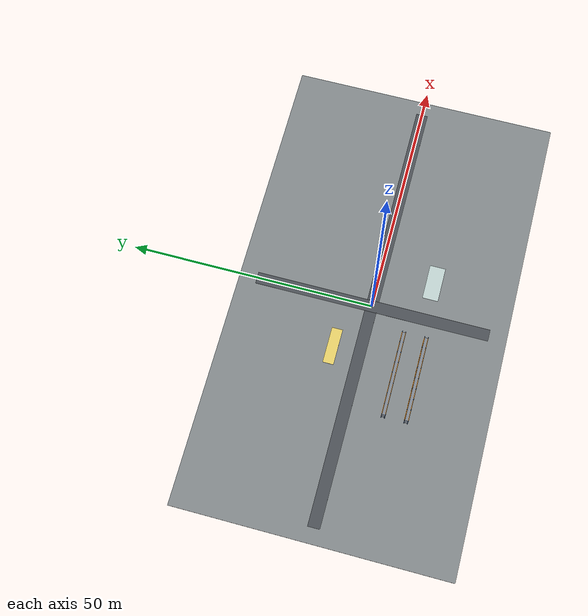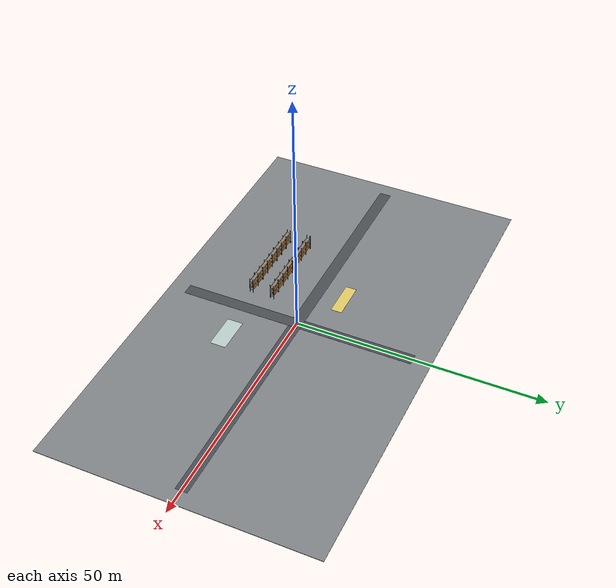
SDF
<sdf version="1.7">
 <world name="warehouse_layout_demo">
  <include><uri>model://sun</uri></include>
  <model name="site_floor">
   <static>true</static>
   <pose>0 0 -0.05 0 0 0</pose>
   <link name="floor">
    <collision name="collision"><geometry><box><size>96.0 55.2 0.10</size></box></geometry></collision>
    <visual name="visual">
     <geometry><box><size>96.0 55.2 0.10</size></box></geometry>
     <material><ambient>0.49 0.51 0.52 1</ambient><diffuse>0.49 0.51 0.52 1</diffuse></material>
    </visual>
   </link>
  </model>
  <model name="central_cross_aisle">
   <static>true</static>
   <pose>0.0 0.0 0.025 0 0 0</pose>
   <link name="marking">
    <visual name="visual">
     <geometry><box><size>2.4 48.0 0.012</size></box></geometry>
     <material><ambient>0.28 0.30 0.32 1</ambient><diffuse>0.28 0.30 0.32 1</diffuse></material>
    </visual>
   </link>
  </model>
  <model name="central_long_aisle">
   <static>true</static>
   <pose>0.0 0.0 0.025 0 0 0</pose>
   <link name="marking">
    <visual name="visual">
     <geometry><box><size>90.0 2.4 0.012</size></box></geometry>
     <material><ambient>0.28 0.30 0.32 1</ambient><diffuse>0.28 0.30 0.32 1</diffuse></material>
    </visual>
   </link>
  </model>
  <model name="storage_rack_east_1_sw">
   <static>true</static>
   <pose>-13.0 -7.5 0 0 0 0</pose>
   <link name="rack">
    <collision name="rack_footprint">
     <pose>0 0 1.65 0 0 0</pose>
     <geometry><box><size>17.0 0.7 3.3</size></box></geometry>
    </collision>
    <visual name="upright_0_0">
     <pose>-8.5 -0.35 1.65 0 0 0</pose>
     <geometry><box><size>0.10 0.10 3.3</size></box></geometry>
     <material><ambient>0.12 0.24 0.42 1</ambient><diffuse>0.12 0.24 0.42 1</diffuse></material>
    </visual>
    <visual name="upright_0_1">
     <pose>-8.5 0.35 1.65 0 0 0</pose>
     <geometry><box><size>0.10 0.10 3.3</size></box></geometry>
     <material><ambient>0.12 0.24 0.42 1</ambient><diffuse>0.12 0.24 0.42 1</diffuse></material>
    </visual>
    <visual name="upright_1_0">
     <pose>-6.375 -0.35 1.65 0 0 0</pose>
     <geometry><box><size>0.10 0.10 3.3</size></box></geometry>
     <material><ambient>0.12 0.24 0.42 1</ambient><diffuse>0.12 0.24 0.42 1</diffuse></material>
    </visual>
    <visual name="upright_1_1">
     <pose>-6.375 0.35 1.65 0 0 0</pose>
     <geometry><box><size>0.10 0.10 3.3</size></box></geometry>
     <material><ambient>0.12 0.24 0.42 1</ambient><diffuse>0.12 0.24 0.42 1</diffuse></material>
    </visual>
    <visual name="upright_2_0">
     <pose>-4.25 -0.35 1.65 0 0 0</pose>
     <geometry><box><size>0.10 0.10 3.3</size></box></geometry>
     <material><ambient>0.12 0.24 0.42 1</ambient><diffuse>0.12 0.24 0.42 1</diffuse></material>
    </visual>
    <visual name="upright_2_1">
     <pose>-4.25 0.35 1.65 0 0 0</pose>
     <geometry><box><size>0.10 0.10 3.3</size></box></geometry>
     <material><ambient>0.12 0.24 0.42 1</ambient><diffuse>0.12 0.24 0.42 1</diffuse></material>
    </visual>
    <visual name="upright_3_0">
     <pose>-2.125 -0.35 1.65 0 0 0</pose>
     <geometry><box><size>0.10 0.10 3.3</size></box></geometry>
     <material><ambient>0.12 0.24 0.42 1</ambient><diffuse>0.12 0.24 0.42 1</diffuse></material>
    </visual>
    <visual name="upright_3_1">
     <pose>-2.125 0.35 1.65 0 0 0</pose>
     <geometry><box><size>0.10 0.10 3.3</size></box></geometry>
     <material><ambient>0.12 0.24 0.42 1</ambient><diffuse>0.12 0.24 0.42 1</diffuse></material>
    </visual>
    <visual name="upright_4_0">
     <pose>0.0 -0.35 1.65 0 0 0</pose>
     <geometry><box><size>0.10 0.10 3.3</size></box></geometry>
     <material><ambient>0.12 0.24 0.42 1</ambient><diffuse>0.12 0.24 0.42 1</diffuse></material>
    </visual>
    <visual name="upright_4_1">
     <pose>0.0 0.35 1.65 0 0 0</pose>
     <geometry><box><size>0.10 0.10 3.3</size></box></geometry>
     <material><ambient>0.12 0.24 0.42 1</ambient><diffuse>0.12 0.24 0.42 1</diffuse></material>
    </visual>
    <visual name="upright_5_0">
     <pose>2.125 -0.35 1.65 0 0 0</pose>
     <geometry><box><size>0.10 0.10 3.3</size></box></geometry>
     <material><ambient>0.12 0.24 0.42 1</ambient><diffuse>0.12 0.24 0.42 1</diffuse></material>
    </visual>
    <visual name="upright_5_1">
     <pose>2.125 0.35 1.65 0 0 0</pose>
     <geometry><box><size>0.10 0.10 3.3</size></box></geometry>
     <material><ambient>0.12 0.24 0.42 1</ambient><diffuse>0.12 0.24 0.42 1</diffuse></material>
    </visual>
    <visual name="upright_6_0">
     <pose>4.25 -0.35 1.65 0 0 0</pose>
     <geometry><box><size>0.10 0.10 3.3</size></box></geometry>
     <material><ambient>0.12 0.24 0.42 1</ambient><diffuse>0.12 0.24 0.42 1</diffuse></material>
    </visual>
    <visual name="upright_6_1">
     <pose>4.25 0.35 1.65 0 0 0</pose>
     <geometry><box><size>0.10 0.10 3.3</size></box></geometry>
     <material><ambient>0.12 0.24 0.42 1</ambient><diffuse>0.12 0.24 0.42 1</diffuse></material>
    </visual>
    <visual name="upright_7_0">
     <pose>6.375 -0.35 1.65 0 0 0</pose>
     <geometry><box><size>0.10 0.10 3.3</size></box></geometry>
     <material><ambient>0.12 0.24 0.42 1</ambient><diffuse>0.12 0.24 0.42 1</diffuse></material>
    </visual>
    <visual name="upright_7_1">
     <pose>6.375 0.35 1.65 0 0 0</pose>
     <geometry><box><size>0.10 0.10 3.3</size></box></geometry>
     <material><ambient>0.12 0.24 0.42 1</ambient><diffuse>0.12 0.24 0.42 1</diffuse></material>
    </visual>
    <visual name="upright_8_0">
     <pose>8.5 -0.35 1.65 0 0 0</pose>
     <geometry><box><size>0.10 0.10 3.3</size></box></geometry>
     <material><ambient>0.12 0.24 0.42 1</ambient><diffuse>0.12 0.24 0.42 1</diffuse></material>
    </visual>
    <visual name="upright_8_1">
     <pose>8.5 0.35 1.65 0 0 0</pose>
     <geometry><box><size>0.10 0.10 3.3</size></box></geometry>
     <material><ambient>0.12 0.24 0.42 1</ambient><diffuse>0.12 0.24 0.42 1</diffuse></material>
    </visual>
    <visual name="deck_0">
     <pose>0 0 0.65 0 0 0</pose>
     <geometry><box><size>17.0 0.7 0.06</size></box></geometry>
     <material><ambient>0.48 0.51 0.55 1</ambient><diffuse>0.48 0.51 0.55 1</diffuse></material>
    </visual>
    <visual name="beam_0_0">
     <pose>0 -0.35 0.71 0 0 0</pose>
     <geometry><box><size>17.0 0.10 0.12</size></box></geometry>
     <material><ambient>0.95 0.55 0.08 1</ambient><diffuse>0.95 0.55 0.08 1</diffuse></material>
    </visual>
    <visual name="beam_0_1">
     <pose>0 0.35 0.71 0 0 0</pose>
     <geometry><box><size>17.0 0.10 0.12</size></box></geometry>
     <material><ambient>0.95 0.55 0.08 1</ambient><diffuse>0.95 0.55 0.08 1</diffuse></material>
    </visual>
    <visual name="deck_1">
     <pose>0 0 1.65 0 0 0</pose>
     <geometry><box><size>17.0 0.7 0.06</size></box></geometry>
     <material><ambient>0.48 0.51 0.55 1</ambient><diffuse>0.48 0.51 0.55 1</diffuse></material>
    </visual>
    <visual name="beam_1_0">
     <pose>0 -0.35 1.71 0 0 0</pose>
     <geometry><box><size>17.0 0.10 0.12</size></box></geometry>
     <material><ambient>0.95 0.55 0.08 1</ambient><diffuse>0.95 0.55 0.08 1</diffuse></material>
    </visual>
    <visual name="beam_1_1">
     <pose>0 0.35 1.71 0 0 0</pose>
     <geometry><box><size>17.0 0.10 0.12</size></box></geometry>
     <material><ambient>0.95 0.55 0.08 1</ambient><diffuse>0.95 0.55 0.08 1</diffuse></material>
    </visual>
    <visual name="deck_2">
     <pose>0 0 2.65 0 0 0</pose>
     <geometry><box><size>17.0 0.7 0.06</size></box></geometry>
     <material><ambient>0.48 0.51 0.55 1</ambient><diffuse>0.48 0.51 0.55 1</diffuse></material>
    </visual>
    <visual name="beam_2_0">
     <pose>0 -0.35 2.71 0 0 0</pose>
     <geometry><box><size>17.0 0.10 0.12</size></box></geometry>
     <material><ambient>0.95 0.55 0.08 1</ambient><diffuse>0.95 0.55 0.08 1</diffuse></material>
    </visual>
    <visual name="beam_2_1">
     <pose>0 0.35 2.71 0 0 0</pose>
     <geometry><box><size>17.0 0.10 0.12</size></box></geometry>
     <material><ambient>0.95 0.55 0.08 1</ambient><diffuse>0.95 0.55 0.08 1</diffuse></material>
    </visual>
    <visual name="load_0_0">
     <pose>-7.4375 0 0.95 0 0 0</pose>
     <geometry><box><size>1.25 0.504 0.48</size></box></geometry>
     <material><ambient>0.72 0.54 0.31 1</ambient><diffuse>0.72 0.54 0.31 1</diffuse></material>
    </visual>
    <visual name="load_0_1">
     <pose>-7.4375 0 1.95 0 0 0</pose>
     <geometry><box><size>1.25 0.504 0.48</size></box></geometry>
     <material><ambient>0.67 0.48 0.25 1</ambient><diffuse>0.67 0.48 0.25 1</diffuse></material>
    </visual>
    <visual name="load_1_0">
     <pose>-5.3125 0 0.95 0 0 0</pose>
     <geometry><box><size>1.25 0.504 0.48</size></box></geometry>
     <material><ambient>0.67 0.48 0.25 1</ambient><diffuse>0.67 0.48 0.25 1</diffuse></material>
    </visual>
    <visual name="load_1_1">
     <pose>-5.3125 0 1.95 0 0 0</pose>
     <geometry><box><size>1.25 0.504 0.48</size></box></geometry>
     <material><ambient>0.72 0.54 0.31 1</ambient><diffuse>0.72 0.54 0.31 1</diffuse></material>
    </visual>
    <visual name="load_2_0">
     <pose>-3.1875 0 0.95 0 0 0</pose>
     <geometry><box><size>1.25 0.504 0.48</size></box></geometry>
     <material><ambient>0.72 0.54 0.31 1</ambient><diffuse>0.72 0.54 0.31 1</diffuse></material>
    </visual>
    <visual name="load_2_1">
     <pose>-3.1875 0 1.95 0 0 0</pose>
     <geometry><box><size>1.25 0.504 0.48</size></box></geometry>
     <material><ambient>0.67 0.48 0.25 1</ambient><diffuse>0.67 0.48 0.25 1</diffuse></material>
    </visual>
    <visual name="load_3_0">
     <pose>-1.0625 0 0.95 0 0 0</pose>
     <geometry><box><size>1.25 0.504 0.48</size></box></geometry>
     <material><ambient>0.67 0.48 0.25 1</ambient><diffuse>0.67 0.48 0.25 1</diffuse></material>
    </visual>
    <visual name="load_3_1">
     <pose>-1.0625 0 1.95 0 0 0</pose>
     <geometry><box><size>1.25 0.504 0.48</size></box></geometry>
     <material><ambient>0.72 0.54 0.31 1</ambient><diffuse>0.72 0.54 0.31 1</diffuse></material>
    </visual>
    <visual name="load_4_0">
     <pose>1.0625 0 0.95 0 0 0</pose>
     <geometry><box><size>1.25 0.504 0.48</size></box></geometry>
     <material><ambient>0.72 0.54 0.31 1</ambient><diffuse>0.72 0.54 0.31 1</diffuse></material>
    </visual>
    <visual name="load_4_1">
     <pose>1.0625 0 1.95 0 0 0</pose>
     <geometry><box><size>1.25 0.504 0.48</size></box></geometry>
     <material><ambient>0.67 0.48 0.25 1</ambient><diffuse>0.67 0.48 0.25 1</diffuse></material>
    </visual>
    <visual name="load_5_0">
     <pose>3.1875 0 0.95 0 0 0</pose>
     <geometry><box><size>1.25 0.504 0.48</size></box></geometry>
     <material><ambient>0.67 0.48 0.25 1</ambient><diffuse>0.67 0.48 0.25 1</diffuse></material>
    </visual>
    <visual name="load_5_1">
     <pose>3.1875 0 1.95 0 0 0</pose>
     <geometry><box><size>1.25 0.504 0.48</size></box></geometry>
     <material><ambient>0.72 0.54 0.31 1</ambient><diffuse>0.72 0.54 0.31 1</diffuse></material>
    </visual>
    <visual name="load_6_0">
     <pose>5.3125 0 0.95 0 0 0</pose>
     <geometry><box><size>1.25 0.504 0.48</size></box></geometry>
     <material><ambient>0.72 0.54 0.31 1</ambient><diffuse>0.72 0.54 0.31 1</diffuse></material>
    </visual>
    <visual name="load_6_1">
     <pose>5.3125 0 1.95 0 0 0</pose>
     <geometry><box><size>1.25 0.504 0.48</size></box></geometry>
     <material><ambient>0.67 0.48 0.25 1</ambient><diffuse>0.67 0.48 0.25 1</diffuse></material>
    </visual>
    <visual name="load_7_0">
     <pose>7.4375 0 0.95 0 0 0</pose>
     <geometry><box><size>1.25 0.504 0.48</size></box></geometry>
     <material><ambient>0.67 0.48 0.25 1</ambient><diffuse>0.67 0.48 0.25 1</diffuse></material>
    </visual>
    <visual name="load_7_1">
     <pose>7.4375 0 1.95 0 0 0</pose>
     <geometry><box><size>1.25 0.504 0.48</size></box></geometry>
     <material><ambient>0.72 0.54 0.31 1</ambient><diffuse>0.72 0.54 0.31 1</diffuse></material>
    </visual>
   </link>
  </model>
  <model name="storage_rack_east_2_sw">
   <static>true</static>
   <pose>-13.0 -12.0 0 0 0 0</pose>
   <link name="rack">
    <collision name="rack_footprint">
     <pose>0 0 1.65 0 0 0</pose>
     <geometry><box><size>17.0 0.7 3.3</size></box></geometry>
    </collision>
    <visual name="upright_0_0">
     <pose>-8.5 -0.35 1.65 0 0 0</pose>
     <geometry><box><size>0.10 0.10 3.3</size></box></geometry>
     <material><ambient>0.12 0.24 0.42 1</ambient><diffuse>0.12 0.24 0.42 1</diffuse></material>
    </visual>
    <visual name="upright_0_1">
     <pose>-8.5 0.35 1.65 0 0 0</pose>
     <geometry><box><size>0.10 0.10 3.3</size></box></geometry>
     <material><ambient>0.12 0.24 0.42 1</ambient><diffuse>0.12 0.24 0.42 1</diffuse></material>
    </visual>
    <visual name="upright_1_0">
     <pose>-6.375 -0.35 1.65 0 0 0</pose>
     <geometry><box><size>0.10 0.10 3.3</size></box></geometry>
     <material><ambient>0.12 0.24 0.42 1</ambient><diffuse>0.12 0.24 0.42 1</diffuse></material>
    </visual>
    <visual name="upright_1_1">
     <pose>-6.375 0.35 1.65 0 0 0</pose>
     <geometry><box><size>0.10 0.10 3.3</size></box></geometry>
     <material><ambient>0.12 0.24 0.42 1</ambient><diffuse>0.12 0.24 0.42 1</diffuse></material>
    </visual>
    <visual name="upright_2_0">
     <pose>-4.25 -0.35 1.65 0 0 0</pose>
     <geometry><box><size>0.10 0.10 3.3</size></box></geometry>
     <material><ambient>0.12 0.24 0.42 1</ambient><diffuse>0.12 0.24 0.42 1</diffuse></material>
    </visual>
    <visual name="upright_2_1">
     <pose>-4.25 0.35 1.65 0 0 0</pose>
     <geometry><box><size>0.10 0.10 3.3</size></box></geometry>
     <material><ambient>0.12 0.24 0.42 1</ambient><diffuse>0.12 0.24 0.42 1</diffuse></material>
    </visual>
    <visual name="upright_3_0">
     <pose>-2.125 -0.35 1.65 0 0 0</pose>
     <geometry><box><size>0.10 0.10 3.3</size></box></geometry>
     <material><ambient>0.12 0.24 0.42 1</ambient><diffuse>0.12 0.24 0.42 1</diffuse></material>
    </visual>
    <visual name="upright_3_1">
     <pose>-2.125 0.35 1.65 0 0 0</pose>
     <geometry><box><size>0.10 0.10 3.3</size></box></geometry>
     <material><ambient>0.12 0.24 0.42 1</ambient><diffuse>0.12 0.24 0.42 1</diffuse></material>
    </visual>
    <visual name="upright_4_0">
     <pose>0.0 -0.35 1.65 0 0 0</pose>
     <geometry><box><size>0.10 0.10 3.3</size></box></geometry>
     <material><ambient>0.12 0.24 0.42 1</ambient><diffuse>0.12 0.24 0.42 1</diffuse></material>
    </visual>
    <visual name="upright_4_1">
     <pose>0.0 0.35 1.65 0 0 0</pose>
     <geometry><box><size>0.10 0.10 3.3</size></box></geometry>
     <material><ambient>0.12 0.24 0.42 1</ambient><diffuse>0.12 0.24 0.42 1</diffuse></material>
    </visual>
    <visual name="upright_5_0">
     <pose>2.125 -0.35 1.65 0 0 0</pose>
     <geometry><box><size>0.10 0.10 3.3</size></box></geometry>
     <material><ambient>0.12 0.24 0.42 1</ambient><diffuse>0.12 0.24 0.42 1</diffuse></material>
    </visual>
    <visual name="upright_5_1">
     <pose>2.125 0.35 1.65 0 0 0</pose>
     <geometry><box><size>0.10 0.10 3.3</size></box></geometry>
     <material><ambient>0.12 0.24 0.42 1</ambient><diffuse>0.12 0.24 0.42 1</diffuse></material>
    </visual>
    <visual name="upright_6_0">
     <pose>4.25 -0.35 1.65 0 0 0</pose>
     <geometry><box><size>0.10 0.10 3.3</size></box></geometry>
     <material><ambient>0.12 0.24 0.42 1</ambient><diffuse>0.12 0.24 0.42 1</diffuse></material>
    </visual>
    <visual name="upright_6_1">
     <pose>4.25 0.35 1.65 0 0 0</pose>
     <geometry><box><size>0.10 0.10 3.3</size></box></geometry>
     <material><ambient>0.12 0.24 0.42 1</ambient><diffuse>0.12 0.24 0.42 1</diffuse></material>
    </visual>
    <visual name="upright_7_0">
     <pose>6.375 -0.35 1.65 0 0 0</pose>
     <geometry><box><size>0.10 0.10 3.3</size></box></geometry>
     <material><ambient>0.12 0.24 0.42 1</ambient><diffuse>0.12 0.24 0.42 1</diffuse></material>
    </visual>
    <visual name="upright_7_1">
     <pose>6.375 0.35 1.65 0 0 0</pose>
     <geometry><box><size>0.10 0.10 3.3</size></box></geometry>
     <material><ambient>0.12 0.24 0.42 1</ambient><diffuse>0.12 0.24 0.42 1</diffuse></material>
    </visual>
    <visual name="upright_8_0">
     <pose>8.5 -0.35 1.65 0 0 0</pose>
     <geometry><box><size>0.10 0.10 3.3</size></box></geometry>
     <material><ambient>0.12 0.24 0.42 1</ambient><diffuse>0.12 0.24 0.42 1</diffuse></material>
    </visual>
    <visual name="upright_8_1">
     <pose>8.5 0.35 1.65 0 0 0</pose>
     <geometry><box><size>0.10 0.10 3.3</size></box></geometry>
     <material><ambient>0.12 0.24 0.42 1</ambient><diffuse>0.12 0.24 0.42 1</diffuse></material>
    </visual>
    <visual name="deck_0">
     <pose>0 0 0.65 0 0 0</pose>
     <geometry><box><size>17.0 0.7 0.06</size></box></geometry>
     <material><ambient>0.48 0.51 0.55 1</ambient><diffuse>0.48 0.51 0.55 1</diffuse></material>
    </visual>
    <visual name="beam_0_0">
     <pose>0 -0.35 0.71 0 0 0</pose>
     <geometry><box><size>17.0 0.10 0.12</size></box></geometry>
     <material><ambient>0.95 0.55 0.08 1</ambient><diffuse>0.95 0.55 0.08 1</diffuse></material>
    </visual>
    <visual name="beam_0_1">
     <pose>0 0.35 0.71 0 0 0</pose>
     <geometry><box><size>17.0 0.10 0.12</size></box></geometry>
     <material><ambient>0.95 0.55 0.08 1</ambient><diffuse>0.95 0.55 0.08 1</diffuse></material>
    </visual>
    <visual name="deck_1">
     <pose>0 0 1.65 0 0 0</pose>
     <geometry><box><size>17.0 0.7 0.06</size></box></geometry>
     <material><ambient>0.48 0.51 0.55 1</ambient><diffuse>0.48 0.51 0.55 1</diffuse></material>
    </visual>
    <visual name="beam_1_0">
     <pose>0 -0.35 1.71 0 0 0</pose>
     <geometry><box><size>17.0 0.10 0.12</size></box></geometry>
     <material><ambient>0.95 0.55 0.08 1</ambient><diffuse>0.95 0.55 0.08 1</diffuse></material>
    </visual>
    <visual name="beam_1_1">
     <pose>0 0.35 1.71 0 0 0</pose>
     <geometry><box><size>17.0 0.10 0.12</size></box></geometry>
     <material><ambient>0.95 0.55 0.08 1</ambient><diffuse>0.95 0.55 0.08 1</diffuse></material>
    </visual>
    <visual name="deck_2">
     <pose>0 0 2.65 0 0 0</pose>
     <geometry><box><size>17.0 0.7 0.06</size></box></geometry>
     <material><ambient>0.48 0.51 0.55 1</ambient><diffuse>0.48 0.51 0.55 1</diffuse></material>
    </visual>
    <visual name="beam_2_0">
     <pose>0 -0.35 2.71 0 0 0</pose>
     <geometry><box><size>17.0 0.10 0.12</size></box></geometry>
     <material><ambient>0.95 0.55 0.08 1</ambient><diffuse>0.95 0.55 0.08 1</diffuse></material>
    </visual>
    <visual name="beam_2_1">
     <pose>0 0.35 2.71 0 0 0</pose>
     <geometry><box><size>17.0 0.10 0.12</size></box></geometry>
     <material><ambient>0.95 0.55 0.08 1</ambient><diffuse>0.95 0.55 0.08 1</diffuse></material>
    </visual>
    <visual name="load_0_0">
     <pose>-7.4375 0 0.95 0 0 0</pose>
     <geometry><box><size>1.25 0.504 0.48</size></box></geometry>
     <material><ambient>0.72 0.54 0.31 1</ambient><diffuse>0.72 0.54 0.31 1</diffuse></material>
    </visual>
    <visual name="load_0_1">
     <pose>-7.4375 0 1.95 0 0 0</pose>
     <geometry><box><size>1.25 0.504 0.48</size></box></geometry>
     <material><ambient>0.67 0.48 0.25 1</ambient><diffuse>0.67 0.48 0.25 1</diffuse></material>
    </visual>
    <visual name="load_1_0">
     <pose>-5.3125 0 0.95 0 0 0</pose>
     <geometry><box><size>1.25 0.504 0.48</size></box></geometry>
     <material><ambient>0.67 0.48 0.25 1</ambient><diffuse>0.67 0.48 0.25 1</diffuse></material>
    </visual>
    <visual name="load_1_1">
     <pose>-5.3125 0 1.95 0 0 0</pose>
     <geometry><box><size>1.25 0.504 0.48</size></box></geometry>
     <material><ambient>0.72 0.54 0.31 1</ambient><diffuse>0.72 0.54 0.31 1</diffuse></material>
    </visual>
    <visual name="load_2_0">
     <pose>-3.1875 0 0.95 0 0 0</pose>
     <geometry><box><size>1.25 0.504 0.48</size></box></geometry>
     <material><ambient>0.72 0.54 0.31 1</ambient><diffuse>0.72 0.54 0.31 1</diffuse></material>
    </visual>
    <visual name="load_2_1">
     <pose>-3.1875 0 1.95 0 0 0</pose>
     <geometry><box><size>1.25 0.504 0.48</size></box></geometry>
     <material><ambient>0.67 0.48 0.25 1</ambient><diffuse>0.67 0.48 0.25 1</diffuse></material>
    </visual>
    <visual name="load_3_0">
     <pose>-1.0625 0 0.95 0 0 0</pose>
     <geometry><box><size>1.25 0.504 0.48</size></box></geometry>
     <material><ambient>0.67 0.48 0.25 1</ambient><diffuse>0.67 0.48 0.25 1</diffuse></material>
    </visual>
    <visual name="load_3_1">
     <pose>-1.0625 0 1.95 0 0 0</pose>
     <geometry><box><size>1.25 0.504 0.48</size></box></geometry>
     <material><ambient>0.72 0.54 0.31 1</ambient><diffuse>0.72 0.54 0.31 1</diffuse></material>
    </visual>
    <visual name="load_4_0">
     <pose>1.0625 0 0.95 0 0 0</pose>
     <geometry><box><size>1.25 0.504 0.48</size></box></geometry>
     <material><ambient>0.72 0.54 0.31 1</ambient><diffuse>0.72 0.54 0.31 1</diffuse></material>
    </visual>
    <visual name="load_4_1">
     <pose>1.0625 0 1.95 0 0 0</pose>
     <geometry><box><size>1.25 0.504 0.48</size></box></geometry>
     <material><ambient>0.67 0.48 0.25 1</ambient><diffuse>0.67 0.48 0.25 1</diffuse></material>
    </visual>
    <visual name="load_5_0">
     <pose>3.1875 0 0.95 0 0 0</pose>
     <geometry><box><size>1.25 0.504 0.48</size></box></geometry>
     <material><ambient>0.67 0.48 0.25 1</ambient><diffuse>0.67 0.48 0.25 1</diffuse></material>
    </visual>
    <visual name="load_5_1">
     <pose>3.1875 0 1.95 0 0 0</pose>
     <geometry><box><size>1.25 0.504 0.48</size></box></geometry>
     <material><ambient>0.72 0.54 0.31 1</ambient><diffuse>0.72 0.54 0.31 1</diffuse></material>
    </visual>
    <visual name="load_6_0">
     <pose>5.3125 0 0.95 0 0 0</pose>
     <geometry><box><size>1.25 0.504 0.48</size></box></geometry>
     <material><ambient>0.72 0.54 0.31 1</ambient><diffuse>0.72 0.54 0.31 1</diffuse></material>
    </visual>
    <visual name="load_6_1">
     <pose>5.3125 0 1.95 0 0 0</pose>
     <geometry><box><size>1.25 0.504 0.48</size></box></geometry>
     <material><ambient>0.67 0.48 0.25 1</ambient><diffuse>0.67 0.48 0.25 1</diffuse></material>
    </visual>
    <visual name="load_7_0">
     <pose>7.4375 0 0.95 0 0 0</pose>
     <geometry><box><size>1.25 0.504 0.48</size></box></geometry>
     <material><ambient>0.67 0.48 0.25 1</ambient><diffuse>0.67 0.48 0.25 1</diffuse></material>
    </visual>
    <visual name="load_7_1">
     <pose>7.4375 0 1.95 0 0 0</pose>
     <geometry><box><size>1.25 0.504 0.48</size></box></geometry>
     <material><ambient>0.72 0.54 0.31 1</ambient><diffuse>0.72 0.54 0.31 1</diffuse></material>
    </visual>
   </link>
  </model>
  <model name="vehicle_stage_4_line_3_se_pad">
   <static>true</static>
   <pose>8.0 -11.0 0.012 0 0 0</pose>
   <link name="marking">
    <visual name="visual">
     <geometry><box><size>7.2 3.2 0.012</size></box></geometry>
     <material><ambient>0.72 0.79 0.78 1</ambient><diffuse>0.72 0.79 0.78 1</diffuse></material>
    </visual>
   </link>
  </model>
  <model name="part_stage_3_line_1_nw_pad">
   <static>true</static>
   <pose>-10.0 5.5 0.012 0 0 0</pose>
   <link name="marking">
    <visual name="visual">
     <geometry><box><size>7.4 2.2 0.012</size></box></geometry>
     <material><ambient>0.87 0.78 0.39 1</ambient><diffuse>0.87 0.78 0.39 1</diffuse></material>
    </visual>
   </link>
  </model>
 </world>
</sdf>
